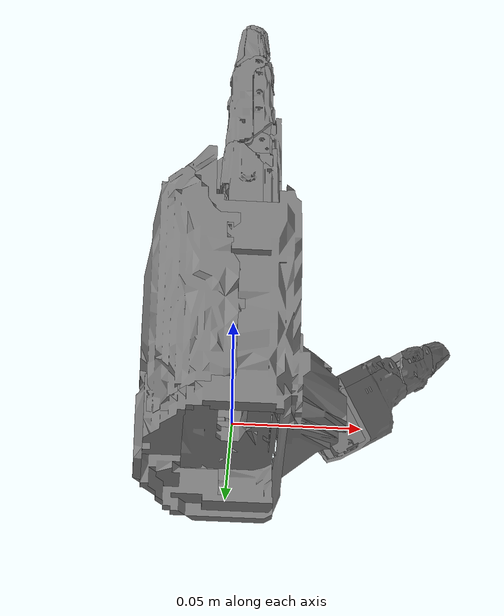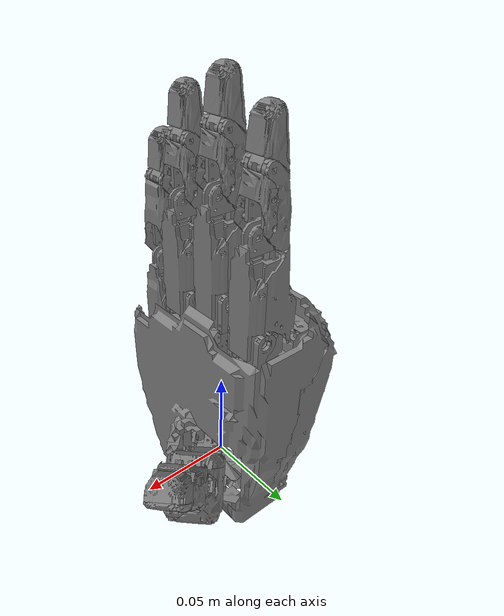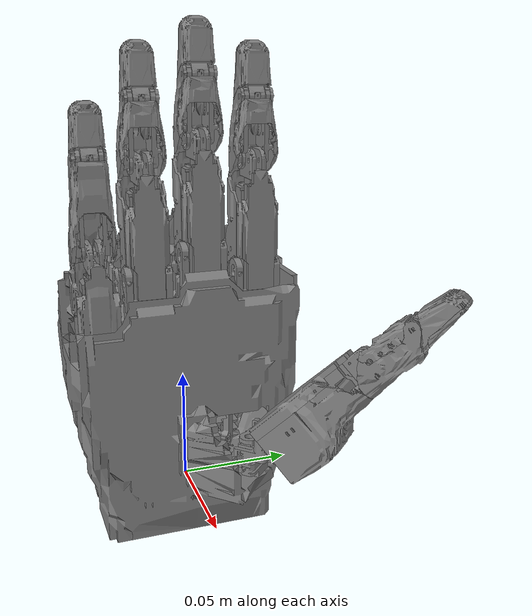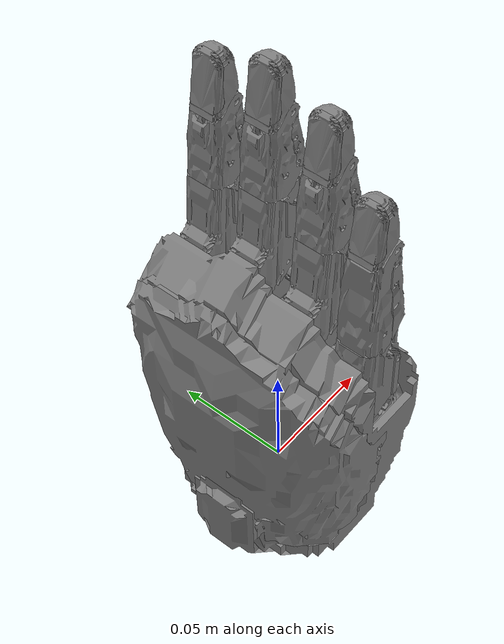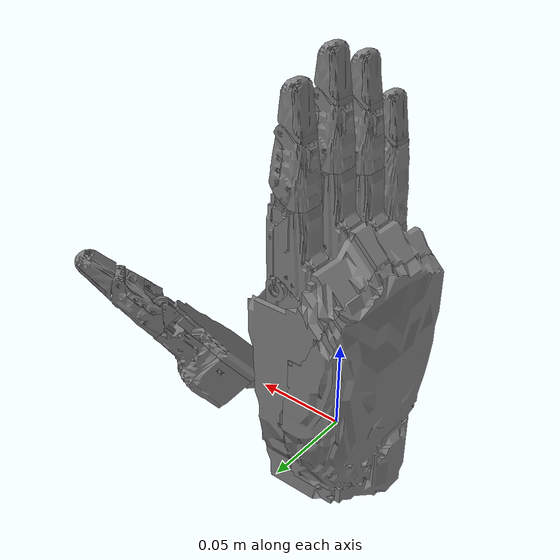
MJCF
<mujoco model="KISTAR_SON_RIGHT">
  <compiler angle="radian" meshdir="01_kistar_son_STL/" boundmass="0.0001" boundinertia="1e-09"/>

  <option timestep="0.0005" integrator="implicitfast" solver="Newton" iterations="100" tolerance="1e-10">
    <flag contact="disable"/>
  </option>

  <asset>
    <mesh name="right_hand_base_link" content_type="model/stl" file="right_hand_base_link.STL"/>
    <mesh name="right_hand_base_front_link" content_type="model/stl" file="right_hand_base_front_link.STL"/>
    <mesh name="right_hand_base_back_link" content_type="model/stl" file="right_hand_base_back_link.STL"/>
    <mesh name="right_hand_thumb_base_link" content_type="model/stl" file="right_hand_thumb_base_link.STL"/>
    <mesh name="right_hand_thumb_0_link" content_type="model/stl" file="right_hand_thumb_0_link.STL"/>
    <mesh name="right_hand_thumb_1_link" content_type="model/stl" file="right_hand_thumb_1_link.STL"/>
    <mesh name="right_hand_thumb_2_link" content_type="model/stl" file="right_hand_thumb_2_link.STL"/>
    <mesh name="right_hand_thumb_2_upper_link" content_type="model/stl" file="right_hand_thumb_2_upper_link.STL"/>
    <mesh name="right_hand_thumb_2_front_link" content_type="model/stl" file="right_hand_thumb_2_front_link.STL"/>
    <mesh name="right_hand_thumb_2_back_link" content_type="model/stl" file="right_hand_thumb_2_back_link.STL"/>
    <mesh name="right_hand_thumb_3_link" content_type="model/stl" file="right_hand_thumb_3_link.STL"/>
    <mesh name="right_hand_thumb_3_front_link" content_type="model/stl" file="right_hand_thumb_3_front_link.STL"/>
    <mesh name="right_hand_thumb_3_back_link" content_type="model/stl" file="right_hand_thumb_3_back_link.STL"/>
    <mesh name="right_hand_thumb_4_link" content_type="model/stl" file="right_hand_thumb_4_link.STL"/>
    <mesh name="right_hand_thumb_4_front_link" content_type="model/stl" file="right_hand_thumb_4_front_link.STL"/>
    <mesh name="right_hand_thumb_4_back_link" content_type="model/stl" file="right_hand_thumb_4_back_link.STL"/>
    <mesh name="right_hand_finger_0_link" content_type="model/stl" file="right_hand_finger_0_link.STL"/>
    <mesh name="right_hand_finger_0_upper_link" content_type="model/stl" file="right_hand_finger_0_upper_link.STL"/>
    <mesh name="right_hand_finger_1_link" content_type="model/stl" file="right_hand_finger_1_link.STL"/>
    <mesh name="right_hand_finger_1_upper_link" content_type="model/stl" file="right_hand_finger_1_upper_link.STL"/>
    <mesh name="right_hand_finger_1_front_link" content_type="model/stl" file="right_hand_finger_1_front_link.STL"/>
    <mesh name="right_hand_finger_1_back_link" content_type="model/stl" file="right_hand_finger_1_back_link.STL"/>
    <mesh name="right_hand_finger_2_link" content_type="model/stl" file="right_hand_finger_2_link.STL"/>
    <mesh name="right_hand_finger_2_front_link" content_type="model/stl" file="right_hand_finger_2_front_link.STL"/>
    <mesh name="right_hand_finger_2_back_link" content_type="model/stl" file="right_hand_finger_2_back_link.STL"/>
    <mesh name="right_hand_finger_3_link" content_type="model/stl" file="right_hand_finger_3_link.STL"/>
    <mesh name="right_hand_finger_3_front_link" content_type="model/stl" file="right_hand_finger_3_front_link.STL"/>
    <mesh name="right_hand_finger_3_back_link" content_type="model/stl" file="right_hand_finger_3_back_link.STL"/>
    <mesh name="right_hand_little_0_link" content_type="model/stl" file="right_hand_little_0_link.STL"/>
    <mesh name="right_hand_little_0_upper_link" content_type="model/stl" file="right_hand_little_0_upper_link.STL"/>
    <mesh name="right_hand_little_0_front_link" content_type="model/stl" file="right_hand_little_0_front_link.STL"/>
    <mesh name="right_hand_little_0_back_link" content_type="model/stl" file="right_hand_little_0_back_link.STL"/>
    <mesh name="right_hand_little_1_link" content_type="model/stl" file="right_hand_little_1_link.STL"/>
    <mesh name="right_hand_little_1_front_link" content_type="model/stl" file="right_hand_little_1_front_link.STL"/>
    <mesh name="right_hand_little_1_back_link" content_type="model/stl" file="right_hand_little_1_back_link.STL"/>
  </asset>

  <worldbody>
    <geom type="mesh" mesh="right_hand_base_link"/>
    <geom type="mesh" contype="0" conaffinity="0" group="1" density="0" rgba="0.2 0.2 0.2 1" mesh="right_hand_base_link"/>
    <geom type="mesh" mesh="right_hand_base_front_link"/>
    <geom type="mesh" contype="0" conaffinity="0" group="1" density="0" rgba="0.2 0.2 0.2 1" mesh="right_hand_base_front_link"/>
    <geom type="mesh" mesh="right_hand_base_back_link"/>
    <geom type="mesh" contype="0" conaffinity="0" group="1" density="0" rgba="0.2 0.2 0.2 1" mesh="right_hand_base_back_link"/>
    <geom pos="0.03062 0.0213 0.0253" quat="0.923879 0 0 -0.382684" type="mesh" mesh="right_hand_thumb_base_link"/>
    <geom pos="0.03062 0.0213 0.0253" quat="0.923879 0 0 -0.382684" type="mesh" contype="0" conaffinity="0" group="1" density="0" rgba="0.2 0.2 0.2 1" mesh="right_hand_thumb_base_link"/>
    <body name="right_hand_thumb_0_link" pos="0.03062 0.0213 0.0253" quat="0.923879 0 0 -0.382684">
      <inertial pos="0 0 0" mass="0.0001" diaginertia="1e-09 1e-09 1e-09"/>
      <joint name="right_hand_thumb_0_joint" pos="0 0 0" axis="0 0 -1" range="-0.7854 0.7854" actuatorfrcrange="-0.2 0.2" damping="0.1" frictionloss="0.03"/>
      <geom type="mesh" mesh="right_hand_thumb_0_link"/>
      <geom type="mesh" contype="0" conaffinity="0" group="1" density="0" rgba="0.2 0.2 0.2 1" mesh="right_hand_thumb_0_link"/>
      <body name="right_hand_thumb_1_link">
        <inertial pos="0 0 0" mass="0.0001" diaginertia="1e-09 1e-09 1e-09"/>
        <joint name="right_hand_thumb_1_joint" pos="0 0 0" axis="1 0 0" range="-0.7854 0.7854" actuatorfrcrange="-0.2 0.2" damping="0.1" frictionloss="0.03"/>
        <geom type="mesh" mesh="right_hand_thumb_1_link"/>
        <geom type="mesh" contype="0" conaffinity="0" group="1" density="0" rgba="0.2 0.2 0.2 1" mesh="right_hand_thumb_1_link"/>
        <body name="right_hand_thumb_2_link" pos="0 0.01303 0.01303" quat="0.923879 0.382684 0 0">
          <inertial pos="0.000139112 0.0204495 -0.00637928" quat="0.641996 0.766591 0.0107085 -0.00808202" mass="0.0473" diaginertia="3.50741e-05 3.31524e-05 4.59604e-06"/>
          <joint name="right_hand_thumb_2_joint" pos="0 0 0" axis="0 -1 0" range="-1.0472 1.0472" actuatorfrcrange="-0.2 0.2" damping="0.1" frictionloss="0.03"/>
          <geom type="mesh" mesh="right_hand_thumb_2_link"/>
          <geom type="mesh" contype="0" conaffinity="0" group="1" density="0" rgba="0.2 0.2 0.2 1" mesh="right_hand_thumb_2_link"/>
          <geom type="mesh" mesh="right_hand_thumb_2_upper_link"/>
          <geom type="mesh" contype="0" conaffinity="0" group="1" density="0" rgba="0.2 0.2 0.2 1" mesh="right_hand_thumb_2_upper_link"/>
          <geom type="mesh" mesh="right_hand_thumb_2_front_link"/>
          <geom type="mesh" contype="0" conaffinity="0" group="1" density="0" rgba="0.2 0.2 0.2 1" mesh="right_hand_thumb_2_front_link"/>
          <geom type="mesh" mesh="right_hand_thumb_2_back_link"/>
          <geom type="mesh" contype="0" conaffinity="0" group="1" density="0" rgba="0.2 0.2 0.2 1" mesh="right_hand_thumb_2_back_link"/>
          <body name="right_hand_thumb_3_link" pos="0 0.0525 -0.00803">
            <inertial pos="0 0.00965884 0.00264116" quat="0.559862 0.43192 -0.43192 0.559862" mass="0.0043" diaginertia="8.76715e-07 7.93572e-07 1.50117e-07"/>
            <joint name="right_hand_thumb_3_joint" pos="0 0 0" axis="1 0 0" range="0 1.5708" actuatorfrcrange="-0.2 0.2" damping="0.1" frictionloss="0.03"/>
            <geom type="mesh" mesh="right_hand_thumb_3_link"/>
            <geom type="mesh" contype="0" conaffinity="0" group="1" density="0" rgba="0.2 0.2 0.2 1" mesh="right_hand_thumb_3_link"/>
            <geom type="mesh" mesh="right_hand_thumb_3_front_link"/>
            <geom type="mesh" contype="0" conaffinity="0" group="1" density="0" rgba="0.2 0.2 0.2 1" mesh="right_hand_thumb_3_front_link"/>
            <geom type="mesh" mesh="right_hand_thumb_3_back_link"/>
            <geom type="mesh" contype="0" conaffinity="0" group="1" density="0" rgba="0.2 0.2 0.2 1" mesh="right_hand_thumb_3_back_link"/>
            <body name="right_hand_thumb_4_link" pos="0 0.026035 0.006217">
              <inertial pos="0 0.00990405 0.00237432" quat="0.453357 0.545572 -0.542025 0.450586" mass="0.0037" diaginertia="6.03488e-07 5.8879e-07 7.76036e-08"/>
              <joint name="right_hand_thumb_4_joint" pos="0 0 0" axis="1 0 0" range="0 1.5708" actuatorfrcrange="-0.2 0.2" damping="0.1" frictionloss="0.03"/>
              <geom type="mesh" mesh="right_hand_thumb_4_link"/>
              <geom type="mesh" contype="0" conaffinity="0" group="1" density="0" rgba="0.2 0.2 0.2 1" mesh="right_hand_thumb_4_link"/>
              <geom type="mesh" mesh="right_hand_thumb_4_front_link"/>
              <geom type="mesh" contype="0" conaffinity="0" group="1" density="0" rgba="0.2 0.2 0.2 1" mesh="right_hand_thumb_4_front_link"/>
              <geom type="mesh" mesh="right_hand_thumb_4_back_link"/>
              <geom type="mesh" contype="0" conaffinity="0" group="1" density="0" rgba="0.2 0.2 0.2 1" mesh="right_hand_thumb_4_back_link"/>
            </body>
          </body>
        </body>
      </body>
    </body>
    <body name="right_hand_index_0_link" pos="0.01475 0.031 0.078">
      <inertial pos="-0.0122417 0 -0.0119424" quat="0.671886 -0.214806 -0.213109 0.676026" mass="0.0434" diaginertia="2.53693e-05 2.22687e-05 4.9021e-06"/>
      <joint name="right_hand_index_0_joint" pos="0 0 0" axis="-1 0 0" range="-0.261799 0.261799" actuatorfrcrange="-0.2 0.2" damping="0.1" frictionloss="0.03"/>
      <geom type="mesh" mesh="right_hand_finger_0_link"/>
      <geom type="mesh" contype="0" conaffinity="0" group="1" density="0" rgba="0.2 0.2 0.2 1" mesh="right_hand_finger_0_link"/>
      <geom type="mesh" mesh="right_hand_finger_0_upper_link"/>
      <geom type="mesh" contype="0" conaffinity="0" group="1" density="0" rgba="0.2 0.2 0.2 1" mesh="right_hand_finger_0_upper_link"/>
      <body name="right_hand_index_1_link" pos="-0.005 0 0.0215">
        <inertial pos="-0.00370794 0 0.0164775" quat="0.708493 0.0301359 0.0309677 0.704393" mass="0.035" diaginertia="2.17876e-05 2.09064e-05 1.87297e-06"/>
        <joint name="right_hand_index_1_joint" pos="0 0 0" axis="0 1 0" range="0 1.5708" actuatorfrcrange="-0.2 0.2" damping="0.1" frictionloss="0.03"/>
        <geom type="mesh" mesh="right_hand_finger_1_link"/>
        <geom type="mesh" contype="0" conaffinity="0" group="1" density="0" rgba="0.2 0.2 0.2 1" mesh="right_hand_finger_1_link"/>
        <geom type="mesh" mesh="right_hand_finger_1_upper_link"/>
        <geom type="mesh" contype="0" conaffinity="0" group="1" density="0" rgba="0.2 0.2 0.2 1" mesh="right_hand_finger_1_upper_link"/>
        <geom type="mesh" mesh="right_hand_finger_1_front_link"/>
        <geom type="mesh" contype="0" conaffinity="0" group="1" density="0" rgba="0.2 0.2 0.2 1" mesh="right_hand_finger_1_front_link"/>
        <geom type="mesh" mesh="right_hand_finger_1_back_link"/>
        <geom type="mesh" contype="0" conaffinity="0" group="1" density="0" rgba="0.2 0.2 0.2 1" mesh="right_hand_finger_1_back_link"/>
        <body name="right_hand_index_2_link" pos="-0.007 0 0.0475">
          <inertial pos="-0.0024886 0 0.00840977" quat="0.989776 0 -0.142633 0" mass="0.0043" diaginertia="7.24293e-07 6.35014e-07 1.49941e-07"/>
          <joint name="right_hand_index_2_joint" pos="0 0 0" axis="0 1 0" range="0 1.5708" actuatorfrcrange="-0.2 0.2" damping="0.1" frictionloss="0.03"/>
          <geom type="mesh" mesh="right_hand_finger_2_link"/>
          <geom type="mesh" contype="0" conaffinity="0" group="1" density="0" rgba="0.2 0.2 0.2 1" mesh="right_hand_finger_2_link"/>
          <geom type="mesh" mesh="right_hand_finger_2_front_link"/>
          <geom type="mesh" contype="0" conaffinity="0" group="1" density="0" rgba="0.2 0.2 0.2 1" mesh="right_hand_finger_2_front_link"/>
          <geom type="mesh" mesh="right_hand_finger_2_back_link"/>
          <geom type="mesh" contype="0" conaffinity="0" group="1" density="0" rgba="0.2 0.2 0.2 1" mesh="right_hand_finger_2_back_link"/>
          <body name="right_hand_index_3_link" pos="0.006217 0 0.026035">
            <inertial pos="-0.00237432 0 0.00990405" quat="0.996547 0.000445186 0.0829215 0.00419741" mass="0.0037" diaginertia="6.00078e-07 5.8879e-07 8.10134e-08"/>
            <joint name="right_hand_index_3_joint" pos="0 0 0" axis="0 1 0" range="0 1.5708" actuatorfrcrange="-0.2 0.2" damping="0.1" frictionloss="0.03"/>
            <geom type="mesh" mesh="right_hand_finger_3_link"/>
            <geom type="mesh" contype="0" conaffinity="0" group="1" density="0" rgba="0.2 0.2 0.2 1" mesh="right_hand_finger_3_link"/>
            <geom type="mesh" mesh="right_hand_finger_3_front_link"/>
            <geom type="mesh" contype="0" conaffinity="0" group="1" density="0" rgba="0.2 0.2 0.2 1" mesh="right_hand_finger_3_front_link"/>
            <geom type="mesh" mesh="right_hand_finger_3_back_link"/>
            <geom type="mesh" contype="0" conaffinity="0" group="1" density="0" rgba="0.2 0.2 0.2 1" mesh="right_hand_finger_3_back_link"/>
          </body>
        </body>
      </body>
    </body>
    <body name="right_hand_middle_0_link" pos="0.01475 0.00701 0.087">
      <inertial pos="-0.0122417 0 -0.0119424" quat="0.671886 -0.214806 -0.213109 0.676026" mass="0.0434" diaginertia="2.53693e-05 2.22687e-05 4.9021e-06"/>
      <joint name="right_hand_middle_0_joint" pos="0 0 0" axis="-1 0 0" range="-0.261799 0.261799" actuatorfrcrange="-0.2 0.2" damping="0.1" frictionloss="0.03"/>
      <geom type="mesh" mesh="right_hand_finger_0_link"/>
      <geom type="mesh" contype="0" conaffinity="0" group="1" density="0" rgba="0.2 0.2 0.2 1" mesh="right_hand_finger_0_link"/>
      <geom type="mesh" mesh="right_hand_finger_0_upper_link"/>
      <geom type="mesh" contype="0" conaffinity="0" group="1" density="0" rgba="0.2 0.2 0.2 1" mesh="right_hand_finger_0_upper_link"/>
      <body name="right_hand_middle_1_link" pos="-0.005 0 0.0215">
        <inertial pos="-0.00370794 0 0.0164775" quat="0.708493 0.0301359 0.0309677 0.704393" mass="0.035" diaginertia="2.17876e-05 2.09064e-05 1.87297e-06"/>
        <joint name="right_hand_middle_1_joint" pos="0 0 0" axis="0 1 0" range="0 1.5708" actuatorfrcrange="-0.2 0.2" damping="0.1" frictionloss="0.03"/>
        <geom type="mesh" mesh="right_hand_finger_1_link"/>
        <geom type="mesh" contype="0" conaffinity="0" group="1" density="0" rgba="0.2 0.2 0.2 1" mesh="right_hand_finger_1_link"/>
        <geom type="mesh" mesh="right_hand_finger_1_upper_link"/>
        <geom type="mesh" contype="0" conaffinity="0" group="1" density="0" rgba="0.2 0.2 0.2 1" mesh="right_hand_finger_1_upper_link"/>
        <geom type="mesh" mesh="right_hand_finger_1_front_link"/>
        <geom type="mesh" contype="0" conaffinity="0" group="1" density="0" rgba="0.2 0.2 0.2 1" mesh="right_hand_finger_1_front_link"/>
        <geom type="mesh" mesh="right_hand_finger_1_back_link"/>
        <geom type="mesh" contype="0" conaffinity="0" group="1" density="0" rgba="0.2 0.2 0.2 1" mesh="right_hand_finger_1_back_link"/>
        <body name="right_hand_middle_2_link" pos="-0.007 0 0.0475">
          <inertial pos="-0.0024886 0 0.00840977" quat="0.989776 0 -0.142633 0" mass="0.0043" diaginertia="7.24293e-07 6.35014e-07 1.49941e-07"/>
          <joint name="right_hand_middle_2_joint" pos="0 0 0" axis="0 1 0" range="0 1.5708" actuatorfrcrange="-0.2 0.2" damping="0.1" frictionloss="0.03"/>
          <geom type="mesh" mesh="right_hand_finger_2_link"/>
          <geom type="mesh" contype="0" conaffinity="0" group="1" density="0" rgba="0.2 0.2 0.2 1" mesh="right_hand_finger_2_link"/>
          <geom type="mesh" mesh="right_hand_finger_2_front_link"/>
          <geom type="mesh" contype="0" conaffinity="0" group="1" density="0" rgba="0.2 0.2 0.2 1" mesh="right_hand_finger_2_front_link"/>
          <geom type="mesh" mesh="right_hand_finger_2_back_link"/>
          <geom type="mesh" contype="0" conaffinity="0" group="1" density="0" rgba="0.2 0.2 0.2 1" mesh="right_hand_finger_2_back_link"/>
          <body name="right_hand_middle_3_link" pos="0.006217 0 0.026035">
            <inertial pos="-0.00237432 0 0.00990405" quat="0.996547 0.000445186 0.0829215 0.00419741" mass="0.0037" diaginertia="6.00078e-07 5.8879e-07 8.10134e-08"/>
            <joint name="right_hand_middle_3_joint" pos="0 0 0" axis="0 1 0" range="0 1.5708" actuatorfrcrange="-0.2 0.2" damping="0.1" frictionloss="0.03"/>
            <geom type="mesh" mesh="right_hand_finger_3_link"/>
            <geom type="mesh" contype="0" conaffinity="0" group="1" density="0" rgba="0.2 0.2 0.2 1" mesh="right_hand_finger_3_link"/>
            <geom type="mesh" mesh="right_hand_finger_3_front_link"/>
            <geom type="mesh" contype="0" conaffinity="0" group="1" density="0" rgba="0.2 0.2 0.2 1" mesh="right_hand_finger_3_front_link"/>
            <geom type="mesh" mesh="right_hand_finger_3_back_link"/>
            <geom type="mesh" contype="0" conaffinity="0" group="1" density="0" rgba="0.2 0.2 0.2 1" mesh="right_hand_finger_3_back_link"/>
          </body>
        </body>
      </body>
    </body>
    <body name="right_hand_ring_0_link" pos="0.01475 -0.017 0.078">
      <inertial pos="-0.0122417 0 -0.0119424" quat="0.671886 -0.214806 -0.213109 0.676026" mass="0.0434" diaginertia="2.53693e-05 2.22687e-05 4.9021e-06"/>
      <joint name="right_hand_ring_0_joint" pos="0 0 0" axis="-1 0 0" range="-0.261799 0.261799" actuatorfrcrange="-0.2 0.2" damping="0.1" frictionloss="0.03"/>
      <geom type="mesh" mesh="right_hand_finger_0_link"/>
      <geom type="mesh" contype="0" conaffinity="0" group="1" density="0" rgba="0.2 0.2 0.2 1" mesh="right_hand_finger_0_link"/>
      <geom type="mesh" mesh="right_hand_finger_0_upper_link"/>
      <geom type="mesh" contype="0" conaffinity="0" group="1" density="0" rgba="0.2 0.2 0.2 1" mesh="right_hand_finger_0_upper_link"/>
      <body name="right_hand_ring_1_link" pos="-0.005 0 0.0215">
        <inertial pos="-0.00370794 0 0.0164775" quat="0.708493 0.0301359 0.0309677 0.704393" mass="0.035" diaginertia="2.17876e-05 2.09064e-05 1.87297e-06"/>
        <joint name="right_hand_ring_1_joint" pos="0 0 0" axis="0 1 0" range="0 1.5708" actuatorfrcrange="-0.2 0.2" damping="0.1" frictionloss="0.03"/>
        <geom type="mesh" mesh="right_hand_finger_1_link"/>
        <geom type="mesh" contype="0" conaffinity="0" group="1" density="0" rgba="0.2 0.2 0.2 1" mesh="right_hand_finger_1_link"/>
        <geom type="mesh" mesh="right_hand_finger_1_upper_link"/>
        <geom type="mesh" contype="0" conaffinity="0" group="1" density="0" rgba="0.2 0.2 0.2 1" mesh="right_hand_finger_1_upper_link"/>
        <geom type="mesh" mesh="right_hand_finger_1_front_link"/>
        <geom type="mesh" contype="0" conaffinity="0" group="1" density="0" rgba="0.2 0.2 0.2 1" mesh="right_hand_finger_1_front_link"/>
        <geom type="mesh" mesh="right_hand_finger_1_back_link"/>
        <geom type="mesh" contype="0" conaffinity="0" group="1" density="0" rgba="0.2 0.2 0.2 1" mesh="right_hand_finger_1_back_link"/>
        <body name="right_hand_ring_2_link" pos="-0.007 0 0.0475">
          <inertial pos="-0.0024886 0 0.00840977" quat="0.989776 0 -0.142633 0" mass="0.0043" diaginertia="7.24293e-07 6.35014e-07 1.49941e-07"/>
          <joint name="right_hand_ring_2_joint" pos="0 0 0" axis="0 1 0" range="0 1.5708" actuatorfrcrange="-0.2 0.2" damping="0.1" frictionloss="0.03"/>
          <geom type="mesh" mesh="right_hand_finger_2_link"/>
          <geom type="mesh" contype="0" conaffinity="0" group="1" density="0" rgba="0.2 0.2 0.2 1" mesh="right_hand_finger_2_link"/>
          <geom type="mesh" mesh="right_hand_finger_2_front_link"/>
          <geom type="mesh" contype="0" conaffinity="0" group="1" density="0" rgba="0.2 0.2 0.2 1" mesh="right_hand_finger_2_front_link"/>
          <geom type="mesh" mesh="right_hand_finger_2_back_link"/>
          <geom type="mesh" contype="0" conaffinity="0" group="1" density="0" rgba="0.2 0.2 0.2 1" mesh="right_hand_finger_2_back_link"/>
          <body name="right_hand_ring_3_link" pos="0.006217 0 0.026035">
            <inertial pos="-0.00237432 0 0.00990405" quat="0.996547 0.000445186 0.0829215 0.00419741" mass="0.0037" diaginertia="6.00078e-07 5.8879e-07 8.10134e-08"/>
            <joint name="right_hand_ring_3_joint" pos="0 0 0" axis="0 1 0" range="0 1.5708" actuatorfrcrange="-0.2 0.2" damping="0.1" frictionloss="0.03"/>
            <geom type="mesh" mesh="right_hand_finger_3_link"/>
            <geom type="mesh" contype="0" conaffinity="0" group="1" density="0" rgba="0.2 0.2 0.2 1" mesh="right_hand_finger_3_link"/>
            <geom type="mesh" mesh="right_hand_finger_3_front_link"/>
            <geom type="mesh" contype="0" conaffinity="0" group="1" density="0" rgba="0.2 0.2 0.2 1" mesh="right_hand_finger_3_front_link"/>
            <geom type="mesh" mesh="right_hand_finger_3_back_link"/>
            <geom type="mesh" contype="0" conaffinity="0" group="1" density="0" rgba="0.2 0.2 0.2 1" mesh="right_hand_finger_3_back_link"/>
          </body>
        </body>
      </body>
    </body>
    <body name="right_hand_little_0_link" pos="0.01475 -0.038 0.063">
      <inertial pos="-0.00990142 0 0.0170844" quat="0.699822 0.111023 0.111955 0.696699" mass="0.0381" diaginertia="2.67608e-05 2.4215e-05 3.64853e-06"/>
      <joint name="right_hand_little_0_joint" pos="0 0 0" axis="-1 0 0" range="-0.261799 0.261799" actuatorfrcrange="-0.2 0.2" damping="0.1" frictionloss="0.03"/>
      <geom type="mesh" mesh="right_hand_little_0_link"/>
      <geom type="mesh" contype="0" conaffinity="0" group="1" density="0" rgba="0.2 0.2 0.2 1" mesh="right_hand_little_0_link"/>
      <geom type="mesh" mesh="right_hand_little_0_upper_link"/>
      <geom type="mesh" contype="0" conaffinity="0" group="1" density="0" rgba="0.2 0.2 0.2 1" mesh="right_hand_little_0_upper_link"/>
      <geom type="mesh" mesh="right_hand_little_0_front_link"/>
      <geom type="mesh" contype="0" conaffinity="0" group="1" density="0" rgba="0.2 0.2 0.2 1" mesh="right_hand_little_0_front_link"/>
      <geom type="mesh" mesh="right_hand_little_0_back_link"/>
      <geom type="mesh" contype="0" conaffinity="0" group="1" density="0" rgba="0.2 0.2 0.2 1" mesh="right_hand_little_0_back_link"/>
      <body name="right_hand_little_1_link" pos="-0.0145 0 0.04825">
        <inertial pos="0.00351647 0 0.0161027" quat="0.995842 0 -0.0910921 0" mass="0.0051" diaginertia="2.61142e-06 2.5314e-06 1.65485e-07"/>
        <joint name="right_hand_little_1_joint" pos="0 0 0" axis="0 1 0" range="0 1.5708" actuatorfrcrange="-0.2 0.2" damping="0.1" frictionloss="0.03"/>
        <geom type="mesh" mesh="right_hand_little_1_link"/>
        <geom type="mesh" contype="0" conaffinity="0" group="1" density="0" rgba="0.2 0.2 0.2 1" mesh="right_hand_little_1_link"/>
        <geom type="mesh" mesh="right_hand_little_1_front_link"/>
        <geom type="mesh" contype="0" conaffinity="0" group="1" density="0" rgba="0.2 0.2 0.2 1" mesh="right_hand_little_1_front_link"/>
        <geom type="mesh" mesh="right_hand_little_1_back_link"/>
        <geom type="mesh" contype="0" conaffinity="0" group="1" density="0" rgba="0.2 0.2 0.2 1" mesh="right_hand_little_1_back_link"/>
        <body name="right_hand_little_2_link" pos="0.006217 0 0.039035">
          <inertial pos="-0.00237432 0 0.00990405" quat="0.996547 0.000445186 0.0829215 0.00419741" mass="0.0037" diaginertia="6.00078e-07 5.8879e-07 8.10134e-08"/>
          <joint name="right_hand_little_2_joint" pos="0 0 0" axis="0 1 0" range="0 1.5708" actuatorfrcrange="-0.2 0.2" damping="0.1" frictionloss="0.03"/>
          <geom type="mesh" mesh="right_hand_finger_3_link"/>
          <geom type="mesh" contype="0" conaffinity="0" group="1" density="0" rgba="0.2 0.2 0.2 1" mesh="right_hand_finger_3_link"/>
          <geom type="mesh" mesh="right_hand_finger_3_front_link"/>
          <geom type="mesh" contype="0" conaffinity="0" group="1" density="0" rgba="0.2 0.2 0.2 1" mesh="right_hand_finger_3_front_link"/>
          <geom type="mesh" mesh="right_hand_finger_3_back_link"/>
          <geom type="mesh" contype="0" conaffinity="0" group="1" density="0" rgba="0.2 0.2 0.2 1" mesh="right_hand_finger_3_back_link"/>
        </body>
      </body>
    </body>
  </worldbody>

  <default>
    <position kp="30" kv="0.7" forcerange="-1000 1000"/>
  </default>

  <actuator>
    <position name="right_hand_thumb_0_act"  joint="right_hand_thumb_0_joint"  ctrlrange="-0.7854 0.7854"/>
    <position name="right_hand_thumb_1_act"  joint="right_hand_thumb_1_joint"  ctrlrange="-0.7854 0.7854"/>
    <position name="right_hand_thumb_2_act"  joint="right_hand_thumb_2_joint"  ctrlrange="-1.0472 1.0472"/>
    <position name="right_hand_thumb_3_act"  joint="right_hand_thumb_3_joint"  ctrlrange="0 1.5708"/>
    <position name="right_hand_index_0_act"  joint="right_hand_index_0_joint"  ctrlrange="-0.261799 0.261799"/>
    <position name="right_hand_index_1_act"  joint="right_hand_index_1_joint"  ctrlrange="0 1.5708"/>
    <position name="right_hand_index_2_act"  joint="right_hand_index_2_joint"  ctrlrange="0 1.5708"/>
    <position name="right_hand_middle_0_act" joint="right_hand_middle_0_joint" ctrlrange="-0.261799 0.261799"/>
    <position name="right_hand_middle_1_act" joint="right_hand_middle_1_joint" ctrlrange="0 1.5708"/>
    <position name="right_hand_middle_2_act" joint="right_hand_middle_2_joint" ctrlrange="0 1.5708"/>
    <position name="right_hand_ring_0_act"   joint="right_hand_ring_0_joint"   ctrlrange="-0.261799 0.261799"/>
    <position name="right_hand_ring_1_act"   joint="right_hand_ring_1_joint"   ctrlrange="0 1.5708"/>
    <position name="right_hand_ring_2_act"   joint="right_hand_ring_2_joint"   ctrlrange="0 1.5708"/>
    <position name="right_hand_little_0_act" joint="right_hand_little_0_joint" ctrlrange="-0.261799 0.261799"/>
    <position name="right_hand_little_1_act" joint="right_hand_little_1_joint" ctrlrange="0 1.5708"/>
  </actuator>

  <!-- Kinematic 1:1 coupling (rigid linkage). -->
  <!-- solref="0.0005 1": 0.5ms time const (default 20ms) - near-instant tracking -->
  <!-- solimp="0.999 0.9999 1e-5": stiff constraint - virtually no slack -->
  <equality>
    <joint joint1="right_hand_index_3_joint"  joint2="right_hand_index_2_joint"  polycoef="0 1 0 0 0" solref="0.0005 1" solimp="0.999 0.9999 1e-5"/>
    <joint joint1="right_hand_middle_3_joint" joint2="right_hand_middle_2_joint" polycoef="0 1 0 0 0" solref="0.0005 1" solimp="0.999 0.9999 1e-5"/>
    <joint joint1="right_hand_ring_3_joint"   joint2="right_hand_ring_2_joint"   polycoef="0 1 0 0 0" solref="0.0005 1" solimp="0.999 0.9999 1e-5"/>
    <joint joint1="right_hand_thumb_4_joint"  joint2="right_hand_thumb_3_joint"  polycoef="0 1 0 0 0" solref="0.0005 1" solimp="0.999 0.9999 1e-5"/>
    <joint joint1="right_hand_little_2_joint" joint2="right_hand_little_1_joint" polycoef="0 1 0 0 0" solref="0.0005 1" solimp="0.999 0.9999 1e-5"/>
  </equality>
</mujoco>
